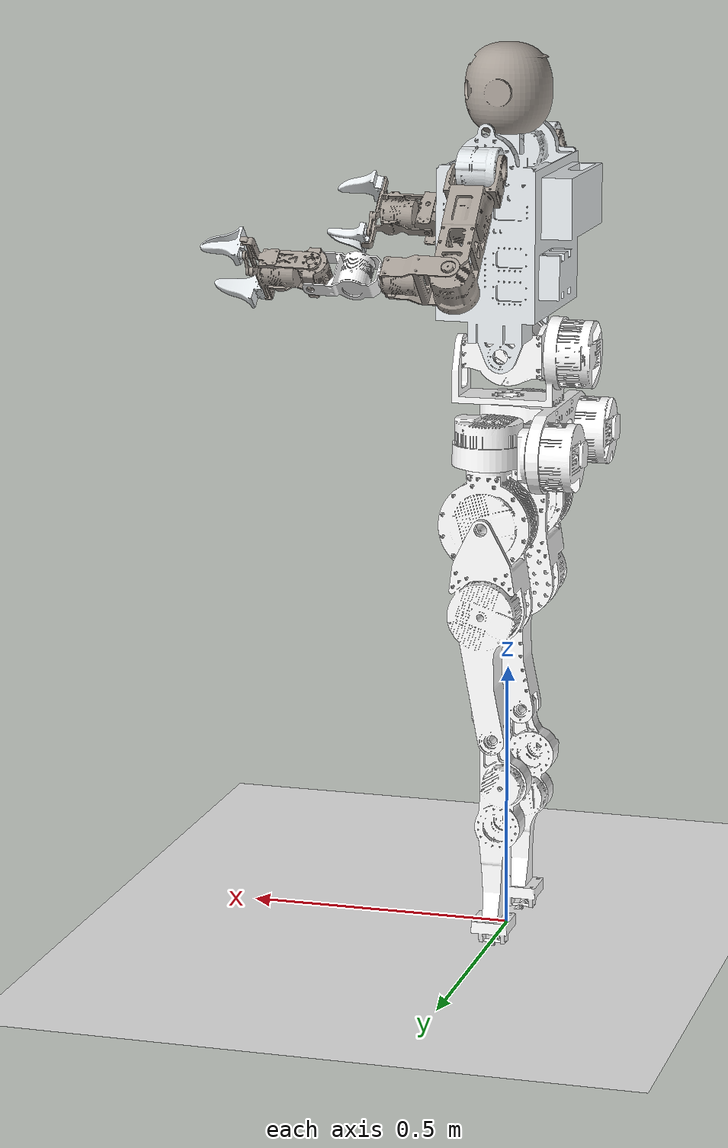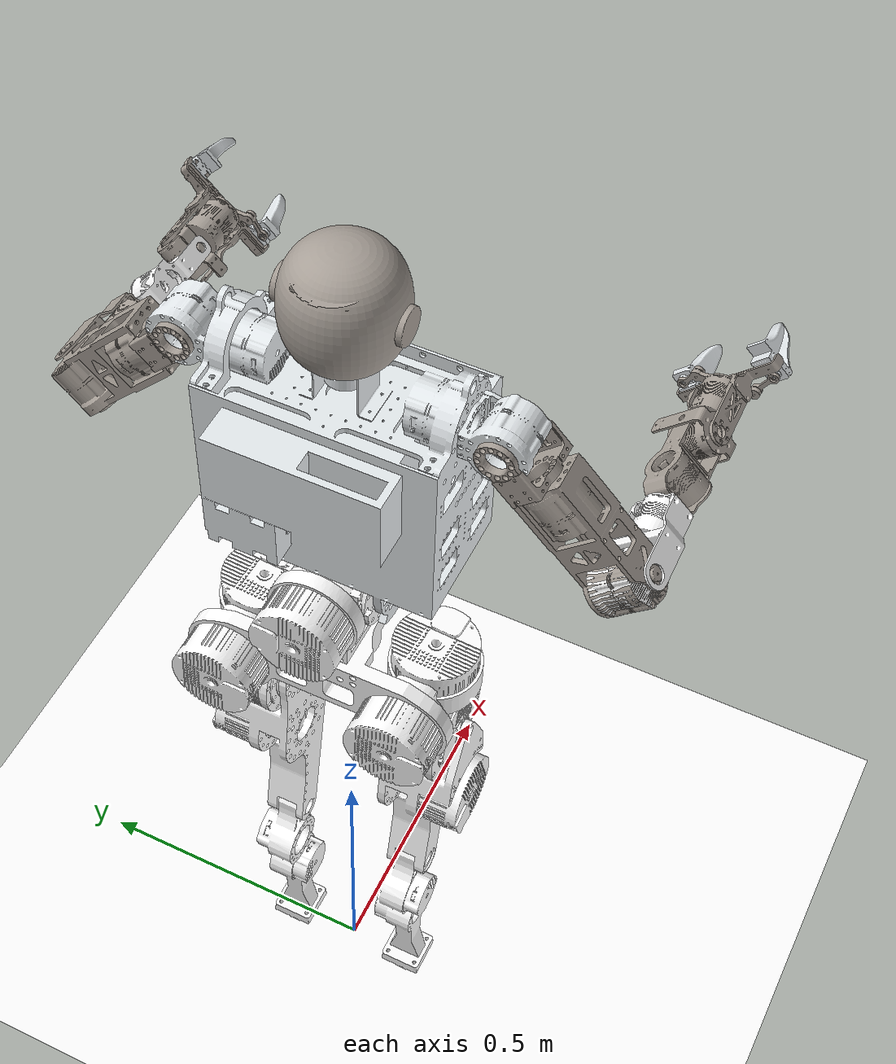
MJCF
<mujoco model="01282">
    <compiler angle="radian" meshdir="assets" autolimits="true"/>

  <default>
    <default class="heima">
      <default class="visual">
        <geom group="2" type="mesh" contype="0" conaffinity="0"/>
      </default>
      <default class="collision">
        <geom group="3" type="capsule" contype="1" conaffinity="1"/>
      </default>
      <site group="0" rgba="1 0 0 1"/>
    </default>
  </default>

  <asset>
    <mesh name="base_link" file="base_link.STL" />
    <mesh name="Link_head_yaw" file="Link_head_yaw.STL" />
    <mesh name="Link_head_pitch" file="Link_head_pitch.STL" />
    <mesh name="Link_arm_r_01" file="Link_arm_r_01.STL" />
    <mesh name="Link_arm_r_02" file="Link_arm_r_02.STL" />
    <mesh name="Link_arm_r_03" file="Link_arm_r_03.STL" />
    <mesh name="Link_arm_r_04" file="Link_arm_r_04.STL" />
    <mesh name="Link_arm_r_05" file="Link_arm_r_05.STL" />
    <mesh name="Link_arm_r_06" file="Link_arm_r_06.STL" />
    <mesh name="Link_arm_r_07" file="Link_arm_r_07.STL" />
    <mesh name="Link_hand_r_01" file="Link_hand_r_01.STL" />
    <mesh name="Link_hand_r_02" file="Link_hand_r_02.STL" />
    <mesh name="Link_arm_l_01" file="Link_arm_l_01.STL" />
    <mesh name="Link_arm_l_02" file="Link_arm_l_02.STL" />
    <mesh name="Link_arm_l_03" file="Link_arm_l_03.STL" />
    <mesh name="Link_arm_l_04" file="Link_arm_l_04.STL" />
    <mesh name="Link_arm_l_05" file="Link_arm_l_05.STL" />
    <mesh name="Link_arm_l_06" file="Link_arm_l_06.STL" />
    <mesh name="Link_arm_l_07" file="Link_arm_l_07.STL" />
    <mesh name="Link_hand_l_01" file="Link_hand_l_01.STL" />
    <mesh name="Link_hand_l_02" file="Link_hand_l_02.STL" />
    <mesh name="Link_waist_pitch" file="Link_waist_pitch.STL" />
    <mesh name="Link_waist_roll" file="Link_waist_roll.STL" />
    <mesh name="Link_waist_yaw" file="Link_waist_yaw.STL" />
    <mesh name="Link_hip_r_roll" file="Link_hip_r_roll.STL" />
    <mesh name="Link_hip_r_yaw" file="Link_hip_r_yaw.STL" />
    <mesh name="Link_hip_r_pitch" file="Link_hip_r_pitch.STL" />
    <mesh name="Link_knee_r_pitch" file="Link_knee_r_pitch.STL" />
    <mesh name="Link_ankle_r_pitch" file="Link_ankle_r_pitch.STL" />
    <mesh name="Link_ankle_r_roll" file="Link_ankle_r_roll.STL" />
    <mesh name="Link_hip_l_roll" file="Link_hip_l_roll.STL" />
    <mesh name="Link_hip_l_yaw" file="Link_hip_l_yaw.STL" />
    <mesh name="Link_hip_l_pitch" file="Link_hip_l_pitch.STL" />
    <mesh name="Link_knee_l_pitch" file="Link_knee_l_pitch.STL" />
    <mesh name="Link_ankle_l_pitch" file="Link_ankle_l_pitch.STL" />
    <mesh name="Link_ankle_l_roll" file="Link_ankle_l_roll.STL" />
  </asset>

  <worldbody>
    <body name="base_link" pos="0 0 1.1" childclass="heima">
     <inertial pos="-0.0134683 0.013847 0.210525" quat="0.707107 0.707107 0 0" mass="30.1611" diaginertia="0.516529 0.387563 0.361926" />
       <freejoint name="floating_base_joint"/>
      <geom class="visual" mesh="base_link" rgba="0.898039 0.917647 0.929412 1" />
      <geom name="base_link_collision" class="collision" type="box" size="0.15 0.12 0.2" pos="0 0 0.2"/>
      <body name="Link_head_yaw" pos="0.00493984 -0.00025 0.422">
        <inertial pos="-2.5226e-05 -0.0030079 0.0193078" quat="0.830346 0.557163 -0.00398594 0.00882028" mass="0.46011" diaginertia="0.000346993 0.000314384 0.000268163" />
        <geom class="visual" rgba="0.65098 0.619608 0.588235 1" mesh="Link_head_yaw" />
        <body name="Link_head_pitch" pos="0 -0.034 0.036">
          <inertial pos="0.00129835 0.0346056 0.0332805" quat="0.68861 0.681138 -0.177698 0.174042" mass="0.755056" diaginertia="0.00253211 0.00235821 0.00224987" />
          <geom class="visual" rgba="0.65098 0.619608 0.588235 1" mesh="Link_head_pitch" />
        </body>
      </body>
      <body name="Link_arm_r_01" pos="0.00493984 -0.16125 0.358">
        <inertial pos="-0.00652083 -0.0379995 -6.92103e-05" quat="0.694706 0.700164 -0.144211 0.0797294" mass="0.936768" diaginertia="0.00107344 0.00105471 0.000944181" />
        <geom class="visual" rgba="0.898039 0.917647 0.929412 1" mesh="Link_arm_r_01" />
        <body name="Link_arm_r_02" pos="-0.036 -0.054 0" quat="0.921061 0.389418 0 0">
          <inertial pos="0.0322521 -0.043165 -2.88114e-09" quat="0.072196 0.703412 -0.072196 0.703412" mass="0.551651" diaginertia="0.00103363 0.000850771 0.000419849" />
          <geom class="visual" rgba="0.65098 0.619608 0.588235 1" mesh="Link_arm_r_02" />
          <body name="Link_arm_r_03" pos="0.036 -0.066 0">
            <inertial pos="-1.06823e-05 -0.0894968 -0.0011636" quat="0.700332 0.71381 -0.00260171 0.00182176" mass="2.89642" diaginertia="0.0151164 0.0144528 0.00369831" />
            <geom class="visual" rgba="0.65098 0.619608 0.588235 1" mesh="Link_arm_r_03" />
            <body name="Link_arm_r_04" pos="0 -0.177 -0.037" quat="0.696707 0 0 0.717356">
              <inertial pos="-0.000106777 -0.0582835 0.0359709" quat="0.759534 0.650463 0.00140704 0.00174362" mass="0.714063" diaginertia="0.00135392 0.000946513 0.000720205" />
              <geom class="visual" rgba="1 1 1 1" mesh="Link_arm_r_04" />
              <body name="Link_arm_r_05" pos="0 -0.133 0.037">
                <inertial pos="-0.000197507 -0.052314 -0.000119049" quat="0.494081 0.487275 -0.509792 0.508488" mass="0.614658" diaginertia="0.000800265 0.000613728 0.000444298" />
                <geom class="visual" rgba="0.65098 0.619608 0.588235 1" mesh="Link_arm_r_05" />
                <body name="Link_arm_r_06" pos="-0.035 -0.117 0">
                  <inertial pos="0.035907 0.00024232 0.00435074" quat="0.398439 0.588122 0.547849 0.441839" mass="0.478506" diaginertia="0.000409325 0.000323717 0.000299928" />
                  <geom class="visual" rgba="0.65098 0.619608 0.588235 1" mesh="Link_arm_r_06" />
                  <body name="Link_arm_r_07" pos="0.035 0 0.03205">
                    <inertial pos="7.36169e-05 -0.0682437 -0.0280057" quat="0.402859 0.914791 -0.0237046 0.0173322" mass="0.671569" diaginertia="0.000983419 0.000671479 0.000584792" />
                    <geom class="visual" rgba="0.65098 0.619608 0.588235 1" mesh="Link_arm_r_07" />
                    <body name="Link_hand_r_01" pos="0.0007018 -0.113362 0.0179548">
                      <inertial pos="-0.00124899 -0.0246184 0.013248" quat="0.457592 0.54356 -0.503745 0.491318" mass="0.112216" diaginertia="8.70628e-05 6.98769e-05 2.89904e-05" />
                      <geom class="visual" rgba="0.898039 0.917647 0.929412 1" mesh="Link_hand_r_01" />
                    </body>
                    <body name="Link_hand_r_02" pos="-0.000656559 -0.113361 -0.0788313">
                      <inertial pos="0.001249 -0.0246199 -0.0132474" quat="0.54356 0.457592 -0.491318 0.503745" mass="0.112216" diaginertia="8.70628e-05 6.98769e-05 2.89904e-05" />
                      <geom class="visual" rgba="0.898039 0.917647 0.929412 1" mesh="Link_hand_r_02" />
                    </body>
                  </body>
                </body>
              </body>
            </body>
          </body>
        </body>
      </body>
      <body name="Link_arm_l_01" pos="0.00493984 0.16075 0.358">
        <inertial pos="-0.00652083 0.0380011 -0.000145418" quat="0.700353 0.697081 -0.0716231 0.135848" mass="0.936768" diaginertia="0.00107314 0.00105497 0.000944217" />
        <geom class="visual" rgba="0.898039 0.917647 0.929412 1" mesh="Link_arm_l_01" />
        <body name="Link_arm_l_02" pos="0.039 0.054 0" quat="0.921061 -0.389418 0 0">
          <inertial pos="-0.042748 0.0431649 -5.6881e-08" quat="-0.072196 0.703412 0.072196 0.703412" mass="0.551651" diaginertia="0.00103363 0.000850771 0.000419849" />
          <geom class="visual" rgba="0.65098 0.619608 0.588235 1" mesh="Link_arm_l_02" />
          <body name="Link_arm_l_03" pos="-0.039 0.066 0">
            <inertial pos="-1.06823e-05 0.0894968 -0.0011636" quat="0.71381 0.700332 -0.00182176 0.00260171" mass="2.89642" diaginertia="0.0151164 0.0144528 0.00369831" />
            <geom class="visual" rgba="0.65098 0.619608 0.588235 1" mesh="Link_arm_l_03" />
            <body name="Link_arm_l_04" pos="0 0.177 0.046" quat="0.696707 0 0 -0.717356">
              <inertial pos="-8.88002e-05 0.0675284 -0.0470695" quat="0.650445 0.75955 -0.00174369 -0.00140696" mass="0.714063" diaginertia="0.00135392 0.000946506 0.000720202" />
              <geom class="visual" rgba="0.65098 0.619608 0.588235 1" mesh="Link_arm_l_04" />
              <body name="Link_arm_l_05" pos="0 0.133 -0.046">
                <inertial pos="-3.42986e-05 0.0515687 -0.000124086" quat="0.487465 0.493972 -0.50828 0.509922" mass="0.602885" diaginertia="0.000818373 0.000630239 0.000446249" />
                <geom class="visual" rgba="1 1 1 1" mesh="Link_arm_l_05" />
                <body name="Link_arm_l_06" pos="0.036 0.117 0">
                  <inertial pos="-0.0334979 -0.000256087 0.00388261" quat="0.298247 0.629435 0.678735 0.232762" mass="0.458254" diaginertia="0.000346249 0.000289889 0.000263303" />
                  <geom class="visual" rgba="0.65098 0.619608 0.588235 1" mesh="Link_arm_l_06" />
                  <body name="Link_arm_l_07" pos="-0.036 0 0.03205">
                    <inertial pos="0.000118278 0.0695223 -0.0266987" quat="0.998975 -0.0394256 -0.0202526 0.00915375" mass="0.705248" diaginertia="0.00112656 0.000715602 0.000692107" />
                    <geom class="visual" rgba="0.65098 0.619608 0.588235 1" mesh="Link_arm_l_07" />
                    <body name="Link_hand_l_01" pos="0.0007018 0.113362 0.0179548">
                      <inertial pos="-0.00218176 0.0246184 0.0132611" quat="0.554431 0.440918 -0.506312 0.491777" mass="0.112216" diaginertia="8.66692e-05 7.03493e-05 2.81115e-05" />
                      <geom class="visual" rgba="0.898039 0.917647 0.929412 1" mesh="Link_hand_l_01" />
                    </body>
                    <body name="Link_hand_l_02" pos="-0.000656559 0.113361 -0.0788313">
                      <inertial pos="0.00218177 0.0246199 -0.0132605" quat="0.440977 0.55441 -0.491718 0.506343" mass="0.112216" diaginertia="8.66673e-05 7.03493e-05 2.81134e-05" />
                      <geom class="visual" rgba="0.898039 0.917647 0.929412 1" mesh="Link_hand_l_02" />
                    </body>
                  </body>
                </body>
              </body>
            </body>
          </body>
        </body>
      </body>
      <body name="Link_waist_pitch" pos="0.000547375 -0.05925 0.00158438">
        <inertial pos="-0.00310416 0.0475814 -0.00203234" quat="0.187609 0.698968 0.131885 0.677387" mass="3.19567" diaginertia="0.00749705 0.00743441 0.00577045" />
        <geom class="visual" rgba="1 1 1 1" mesh="Link_waist_pitch" />
        <site name="imu_in_torso" size="0.01" pos="0.0 0.05 0.08439"/>
        <body name="Link_waist_roll" pos="-0.0795474 0.0595 -0.00158438">
          <inertial pos="-0.00386833 0.000459536 -0.0174024" quat="0.395393 0.591602 0.578215 0.399173" mass="3.47325" diaginertia="0.0241582 0.0229811 0.00745985" />
          <geom class="visual" rgba="1 1 1 1" mesh="Link_waist_roll" />
          <body name="Link_waist_yaw" pos="0.0825 0 -0.093">
            <inertial pos="-0.111702 -0.000477444 -0.0629271" quat="0.405591 0.404377 -0.58023 0.579058" mass="8.09799" diaginertia="0.131829 0.114585 0.0322733" />
            <geom class="visual" rgba="1 1 1 1" mesh="Link_waist_yaw" />
            <body name="Link_hip_r_roll" pos="-0.0775 -0.135 -0.073">
              <inertial pos="0.0703418 -0.000117486 0.016541" quat="0.000100045 0.64471 0.00265478 0.764422" mass="3.054" diaginertia="0.00731622 0.00607461 0.00455633" />
              <joint name="J_hip_r_roll" pos="0 0 0" axis="1 0 0" range="-0.17453 0.43633" actuatorfrcrange="-320 320" />
              <geom class="visual" rgba="1 1 1 1" mesh="Link_hip_r_roll" />
              <body name="Link_hip_r_yaw" pos="0.078 0 -0.0205">
                <inertial pos="0.00104581 -0.00464313 -0.0746825" quat="0.708138 0.0185175 -0.00867034 0.705777" mass="4.1668" diaginertia="0.0256592 0.0150753 0.012917" />
                <joint name="J_hip_r_yaw" pos="0 0 0" axis="0 0 1" range="-0.69813 0.69813" actuatorfrcrange="-320 320" />
                <geom class="visual" rgba="1 1 1 1" mesh="Link_hip_r_yaw" />
                <body name="Link_hip_r_pitch" pos="0 0.044 -0.109">
                  <inertial pos="-0.000413941 -0.0485027 -0.163563" quat="0.996158 0.0237877 -0.00803796 -0.0838968" mass="5.67996" diaginertia="0.0565171 0.0535927 0.0139408" />
                  <joint name="J_hip_r_pitch" pos="0 0 0" axis="0 -1 0" range="-0.7854 1.8326" actuatorfrcrange="-450 450" />
                  <geom class="visual" rgba="1 1 1 1" mesh="Link_hip_r_pitch" />
                  <geom name="right_hip_pitch_collision" class="collision" size="0.065" fromto="0 0 0 0 0 -0.35"/>
                  <body name="Link_knee_r_pitch" pos="-0.00828554 -0.018 -0.409916">
                    <inertial pos="-0.00246512 6.15688e-05 -0.188791" quat="0.677201 -0.00765599 -0.020436 0.735474" mass="3.01663" diaginertia="0.0357712 0.0352912 0.00276594" />
                    <joint name="J_knee_r_pitch" pos="0 0 0" axis="0 -1 0" range="-2.35619 0.08727" actuatorfrcrange="-320 320" />
                    <geom class="visual" rgba="1 1 1 1" mesh="Link_knee_r_pitch" />
                    <geom name="right_knee_collision" class="collision" size="0.052" fromto="0 0 0 0 0 -0.35"/>
                    <body name="Link_ankle_r_pitch" pos="0.002 0 -0.3995">
                      <inertial pos="2.29721e-07 1.22761e-07 1.93348e-09" quat="0.5 0.5 -0.5 0.5" mass="0.0285434" diaginertia="6.84e-06 3.69e-06 3.69e-06" />
                      <joint name="J_ankle_r_pitch" pos="0 0 0" axis="0 -1 0" range="-0.47 0.87" actuatorfrcrange="-60 60" />
                      <geom class="visual" rgba="1 1 1 1" mesh="Link_ankle_r_pitch" />
                      <body name="Link_ankle_r_roll">
                        <inertial pos="0.0361531 0 -0.0404441" quat="0 0.716856 0 0.697221" mass="0.797471" diaginertia="0.00363174 0.00327066 0.000457443" />
                        <joint name="J_ankle_r_roll" pos="0 0 0" axis="1 0 0" range="-0.43633 0.43633" actuatorfrcrange="-60 60" />
                        <geom class="visual" rgba="1 1 1 1" mesh="Link_ankle_r_roll" />
                        <geom name="right_foot1_collision" size="0.01" class="collision" fromto="0.08 -0.03 -0.045 0.03 -0.03 -0.045"/>
                        <geom name="right_foot2_collision" size="0.01" class="collision" fromto="-0.06 -0.025 -0.045 0.12 -0.025 -0.045"/>
                        <geom name="right_foot3_collision" size="0.01" class="collision" fromto="-0.06 -0.015 -0.045 0.14 -0.015 -0.045"/>
                        <geom name="right_foot4_collision" size="0.01" class="collision" fromto="-0.06 0 -0.045 0.15 0 -0.045"/>
                        <geom name="right_foot5_collision" size="0.01" class="collision" fromto="-0.06 0.015 -0.045 0.14 0.015 -0.045"/>
                        <geom name="right_foot6_collision" size="0.01" class="collision" fromto="-0.06 0.025 -0.045 0.12 0.025 -0.045"/>
                        <geom name="right_foot7_collision" size="0.01" class="collision" fromto="0.08 0.03 -0.045 0.03 0.03 -0.045"/>
                      </body>
                    </body>
                  </body>
                </body>
              </body>
            </body>
            <body name="Link_hip_l_roll" pos="-0.0775 0.135 -0.073">
              <inertial pos="0.0703418 -0.000117486 0.016541" quat="0.000100045 0.64471 0.00265478 0.764422" mass="3.054" diaginertia="0.00731622 0.00607461 0.00455633" />
              <joint name="J_hip_l_roll" pos="0 0 0" axis="1 0 0" range="-0.17453 0.43633" actuatorfrcrange="-320 320" />
              <geom class="visual" rgba="1 1 1 1" mesh="Link_hip_l_roll" />
              <body name="Link_hip_l_yaw" pos="0.078 0 -0.0205">
                <inertial pos="0.00104581 0.00464312 -0.0746825" quat="0.705777 -0.00867034 0.0185175 0.708138" mass="4.1668" diaginertia="0.0256592 0.0150753 0.012917" />
                <joint name="J_hip_l_yaw" pos="0 0 0" axis="0 0 1" range="-0.69813 0.69813" actuatorfrcrange="-320 320" />
                <geom class="visual" rgba="1 1 1 1" mesh="Link_hip_l_yaw" />
                <body name="Link_hip_l_pitch" pos="0 -0.044 -0.109">
                  <inertial pos="-0.000413941 0.0485027 -0.163563" quat="0.996158 -0.0237877 -0.008038 0.0838952" mass="5.67996" diaginertia="0.0565171 0.0535927 0.0139408" />
                  <joint name="J_hip_l_pitch" pos="0 0 0" axis="0 -1 0" range="-0.7854 1.8326" actuatorfrcrange="-450 450" />
                  <geom class="visual" rgba="1 1 1 1" mesh="Link_hip_l_pitch" />
                  <geom name="left_hip_pitch_collision" class="collision" size="0.065" fromto="0 0 0 0 0 -0.35"/>
                  <body name="Link_knee_l_pitch" pos="-0.00828554 0.018 -0.409916">
                    <inertial pos="-0.00246511 -6.15677e-05 -0.188791" quat="0.735474 -0.0204363 -0.007656 0.677201" mass="3.01663" diaginertia="0.0357712 0.0352912 0.00276594" />
                    <joint name="J_knee_l_pitch" pos="0 0 0" axis="0 -1 0" range="-2.35619 0.08727" actuatorfrcrange="-320 320" />
                    <geom class="visual" rgba="1 1 1 1" mesh="Link_knee_l_pitch" />
                    <geom name="left_knee_collision" class="collision" size="0.052" fromto="0 0 0 0 0 -0.35"/>
                    <body name="Link_ankle_l_pitch" pos="0.002 0 -0.3995">
                      <inertial pos="-1.22799e-07 2.29522e-07 1.28393e-09" quat="0.5 0.5 -0.5 0.5" mass="0.0285434" diaginertia="6.84e-06 3.69e-06 3.69e-06" />
                      <joint name="J_ankle_l_pitch" pos="0 0 0" axis="0 -1 0" range="-0.47 0.87" actuatorfrcrange="-60 60" />
                      <geom class="visual" rgba="1 1 1 1" mesh="Link_ankle_l_pitch" />
                      <body name="Link_ankle_l_roll">
                        <inertial pos="0.0361531 0 -0.0404441" quat="0 0.716856 0 0.697221" mass="0.797471" diaginertia="0.00363174 0.00327066 0.000457443" />
                        <joint name="J_ankle_l_roll" pos="0 0 0" axis="1 0 0" range="-0.43633 0.43633" actuatorfrcrange="-60 60" />
                        <geom class="visual" rgba="1 1 1 1" mesh="Link_ankle_l_roll" />
                        <geom name="left_foot1_collision" size="0.01" class="collision" fromto="0.08 -0.03 -0.045 0.03 -0.03 -0.045"/>
                        <geom name="left_foot2_collision" size="0.01" class="collision" fromto="-0.06 -0.025 -0.045 0.12 -0.025 -0.045"/>
                        <geom name="left_foot3_collision" size="0.01" class="collision" fromto="-0.06 -0.015 -0.045 0.14 -0.015 -0.045"/>
                        <geom name="left_foot4_collision" size="0.01" class="collision" fromto="-0.06 0 -0.045 0.15 0 -0.045"/>
                        <geom name="left_foot5_collision" size="0.01" class="collision" fromto="-0.06 0.015 -0.045 0.14 0.015 -0.045"/>
                        <geom name="left_foot6_collision" size="0.01" class="collision" fromto="-0.06 0.025 -0.045 0.12 0.025 -0.045"/>
                        <geom name="left_foot7_collision" size="0.01" class="collision" fromto="0.08 0.03 -0.045 0.03 0.03 -0.045"/>
                      </body>
                    </body>
                  </body>
                </body>
              </body>
            </body>
          </body>
        </body>
      </body>
    </body>
  <geom name="ground_plane" type="plane" size="5 5 10" material="MatPlane" rgba="1 1 1 1" /><light pos="0 0 1000" castshadow="true" /></worldbody>
<asset><texture name="texplane" builtin="checker" height="512" width="512" rgb1=".2 .3 .4" rgb2=".1 .15 .2" type="2d" /><material name="MatPlane" reflectance="0.5" shininess="0.01" specular="0.1" texrepeat="1 1" texture="texplane" texuniform="true" /></asset>
    <sensor>
    <gyro name="imu_ang_vel" site="imu_in_torso"/>
    <velocimeter name="imu_lin_vel" site="imu_in_torso"/>
    <accelerometer name="imu_lin_acc" site="imu_in_torso"/>
    <subtreeangmom name="root_angmom" body="Link_waist_pitch"/>
  </sensor>
    <keyframe>
        <key name="home"
             qpos="0 0 1.09 1 0 0 0
                   0 0 0.4 -0.8 0.4 0
                   0 0 0.4 -0.8 0.4 0
                 "
        />
    </keyframe>

</mujoco>
